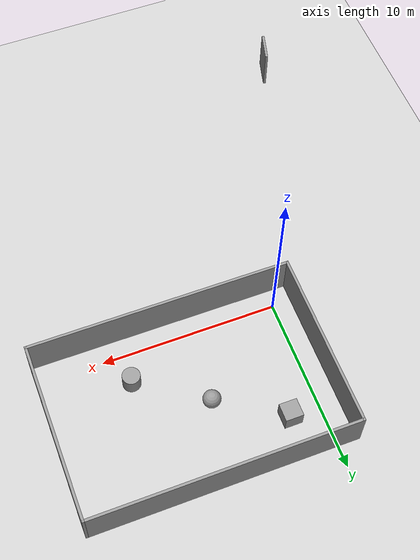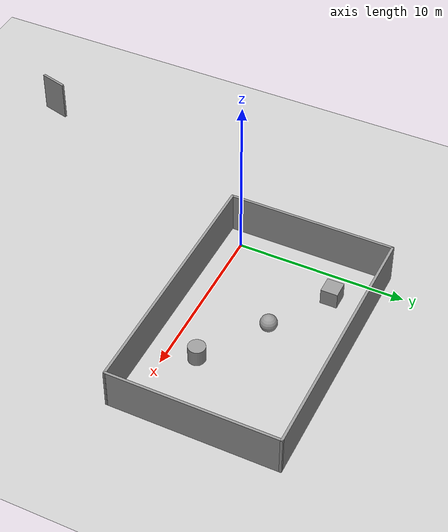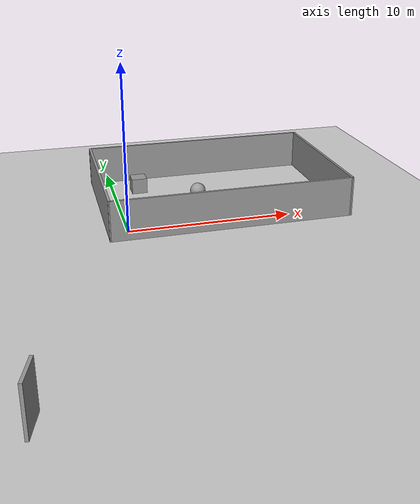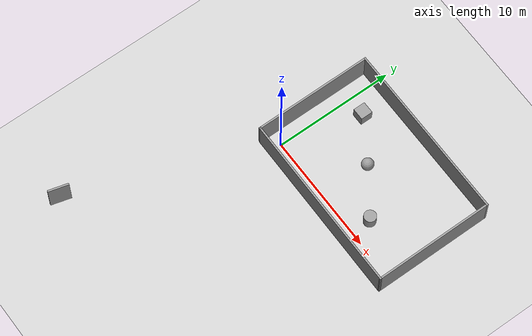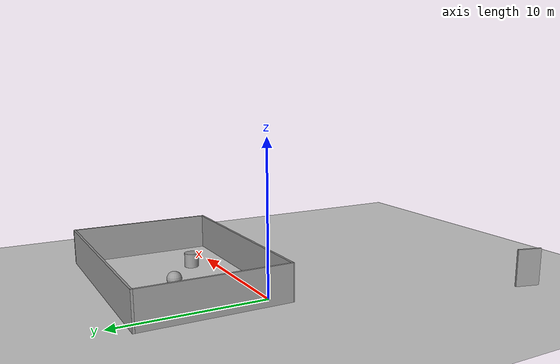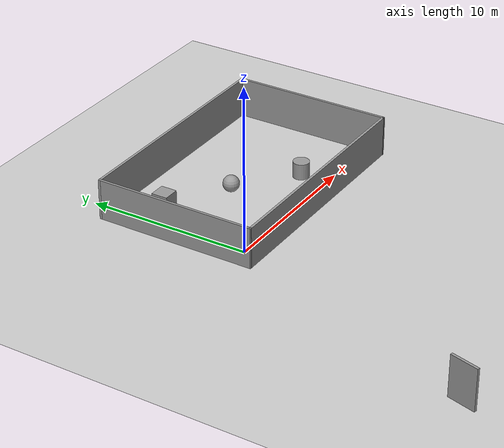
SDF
<sdf version="1.7">
 <world name="default">
  <light name="sun" type="directional">
   <pose>0 0 10 0 -0 0</pose>
   <diffuse>0.8 0.8 0.8 1</diffuse>
   <specular>0.2 0.2 0.2 1</specular>
   <attenuation>
    <range>1000</range>
    <constant>0.9</constant>
    <linear>0.01</linear>
    <quadratic>0.001</quadratic>
   </attenuation>
   <direction>-0.5 0.1 -0.9</direction>
   <spot><inner_angle>0</inner_angle><outer_angle>0</outer_angle><falloff>0</falloff></spot>
  </light>
  <model name="ground_plane">
   <static>1</static>
   <link name="link">
    <collision name="collision">
     <geometry><plane><normal>0 0 1</normal><size>100 100</size></plane></geometry>
     <surface><friction><ode><mu>100</mu><mu2>50</mu2></ode></friction></surface>
    </collision>
    <visual name="visual">
     <cast_shadows>0</cast_shadows>
     <geometry><plane><normal>0 0 1</normal><size>100 100</size></plane></geometry>
     <material>
      <script><uri>file://media/materials/scripts/gazebo.material</uri><name>Gazebo/Grey</name></script>
     </material>
    </visual>
   </link>
  </model>
  <gravity>0 0 -9.8</gravity>
  <magnetic_field>6e-06 2.3e-05 -4.2e-05</magnetic_field>
  <atmosphere type="adiabatic"/>
  <physics type="ode">
   <max_step_size>0.001</max_step_size>
   <real_time_factor>1</real_time_factor>
   <real_time_update_rate>1000</real_time_update_rate>
  </physics>
  <scene><ambient>0.4 0.4 0.4 1</ambient><background>0.7 0.7 0.7 1</background><shadows>1</shadows></scene>
  <audio><device>default</device></audio>
  <spherical_coordinates>
   <surface_model>EARTH_WGS84</surface_model>
   <latitude_deg>0</latitude_deg>
   <longitude_deg>0</longitude_deg>
   <elevation>0</elevation>
   <heading_deg>0</heading_deg>
  </spherical_coordinates>
  <model name="Untitled">
   <pose>3.72259 -4.0111 0 0 -0 0</pose>
   <link name="Wall_1">
    <collision name="Wall_1_Collision">
     <geometry><box><size>1.69327 0.15 2.5</size></box></geometry>
     <pose>0 0 1.25 0 -0 0</pose>
    </collision>
    <visual name="Wall_1_Visual">
     <pose>0 0 1.25 0 -0 0</pose>
     <geometry><box><size>1.69327 0.15 2.5</size></box></geometry>
     <material>
      <script><uri>file://media/materials/scripts/gazebo.material</uri><name>Gazebo/Grey</name></script>
      <ambient>1 1 1 1</ambient>
     </material>
     <meta><layer>0</layer></meta>
    </visual>
    <pose>-9.75275 -11.9709 0 0 -0 -1.83177</pose>
   </link>
   <link name="Wall_10">
    <collision name="Wall_10_Collision">
     <geometry><box><size>15 0.15 2.5</size></box></geometry>
     <pose>0 0 1.25 0 -0 0</pose>
    </collision>
    <visual name="Wall_10_Visual">
     <pose>0 0 1.25 0 -0 0</pose>
     <geometry><box><size>15 0.15 2.5</size></box></geometry>
     <material>
      <script><uri>file://media/materials/scripts/gazebo.material</uri><name>Gazebo/Grey</name></script>
      <ambient>1 1 1 1</ambient>
     </material>
     <meta><layer>0</layer></meta>
    </visual>
    <pose>2.54351 12.7332 0 0 -0 3.14159</pose>
   </link>
   <link name="Wall_11">
    <collision name="Wall_11_Collision">
     <geometry><box><size>9.96855 0.15 2.5</size></box></geometry>
     <pose>0 0 1.25 0 -0 0</pose>
    </collision>
    <visual name="Wall_11_Visual">
     <pose>0 0 1.25 0 -0 0</pose>
     <geometry><box><size>9.96855 0.15 2.5</size></box></geometry>
     <material>
      <script><uri>file://media/materials/scripts/gazebo.material</uri><name>Gazebo/Grey</name></script>
      <ambient>1 1 1 1</ambient>
     </material>
     <meta><layer>0</layer></meta>
    </visual>
    <pose>-4.88149 7.82393 0 0 -0 -1.5708</pose>
   </link>
   <link name="Wall_5">
    <collision name="Wall_5_Collision">
     <geometry><box><size>15 0.15 2.5</size></box></geometry>
     <pose>0 0 1.25 0 -0 0</pose>
    </collision>
    <visual name="Wall_5_Visual">
     <pose>0 0 1.25 0 -0 0</pose>
     <geometry><box><size>15 0.15 2.5</size></box></geometry>
     <material>
      <script><uri>file://media/materials/scripts/gazebo.material</uri><name>Gazebo/Grey</name></script>
      <ambient>1 1 1 1</ambient>
     </material>
     <meta><layer>0</layer></meta>
    </visual>
    <pose>2.54351 2.89893 0 0 -0 -0.002118</pose>
   </link>
   <link name="Wall_9">
    <collision name="Wall_9_Collision">
     <geometry><box><size>10 0.15 2.5</size></box></geometry>
     <pose>0 0 1.25 0 -0 0</pose>
    </collision>
    <visual name="Wall_9_Visual">
     <pose>0 0 1.25 0 -0 0</pose>
     <geometry><box><size>10 0.15 2.5</size></box></geometry>
     <material>
      <script><uri>file://media/materials/scripts/gazebo.material</uri><name>Gazebo/Grey</name></script>
      <ambient>1 1 1 1</ambient>
     </material>
     <meta><layer>0</layer></meta>
    </visual>
    <pose>9.96851 7.80821 0 0 -0 1.5708</pose>
   </link>
   <static>1</static>
  </model>
  <model name="unit_sphere">
   <pose>5.27226 4.19332 0.5 0 -0 0</pose>
   <link name="link">
    <inertial>
     <mass>1</mass>
     <inertia><ixx>0.1</ixx><ixy>0</ixy><ixz>0</ixz><iyy>0.1</iyy><iyz>0</iyz><izz>0.1</izz></inertia>
    </inertial>
    <collision name="collision"><geometry><sphere><radius>0.5</radius></sphere></geometry></collision>
    <visual name="visual">
     <geometry><sphere><radius>0.5</radius></sphere></geometry>
     <material>
      <script><name>Gazebo/Grey</name><uri>file://media/materials/scripts/gazebo.material</uri></script>
     </material>
    </visual>
   </link>
  </model>
  <model name="unit_cylinder">
   <pose>8.89325 1.65031 0.499993 -3e-06 -4e-06 -0</pose>
   <link name="link">
    <inertial>
     <mass>1</mass>
     <inertia><ixx>0.145833</ixx><ixy>0</ixy><ixz>0</ixz><iyy>0.145833</iyy><iyz>0</iyz><izz>0.125</izz></inertia>
    </inertial>
    <collision name="collision">
     <geometry><cylinder><radius>0.5</radius><length>1</length></cylinder></geometry>
    </collision>
    <visual name="visual">
     <geometry><cylinder><radius>0.5</radius><length>1</length></cylinder></geometry>
     <material>
      <script><name>Gazebo/Grey</name><uri>file://media/materials/scripts/gazebo.material</uri></script>
     </material>
    </visual>
   </link>
  </model>
  <model name="unit_box">
   <pose>1.70724 6.41979 0.5 0 -0 0</pose>
   <link name="link">
    <inertial>
     <mass>1</mass>
     <inertia>
      <ixx>0.166667</ixx>
      <ixy>0</ixy>
      <ixz>0</ixz>
      <iyy>0.166667</iyy>
      <iyz>0</iyz>
      <izz>0.166667</izz>
     </inertia>
    </inertial>
    <collision name="collision"><geometry><box><size>1 1 1</size></box></geometry></collision>
    <visual name="visual">
     <geometry><box><size>1 1 1</size></box></geometry>
     <material>
      <script><name>Gazebo/Grey</name><uri>file://media/materials/scripts/gazebo.material</uri></script>
     </material>
    </visual>
   </link>
  </model>
 </world>
</sdf>
